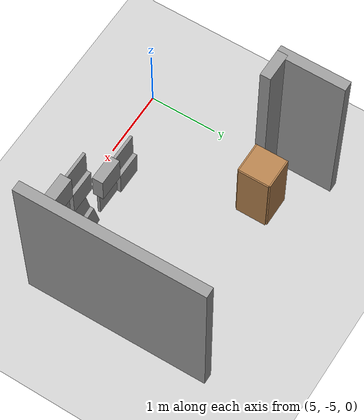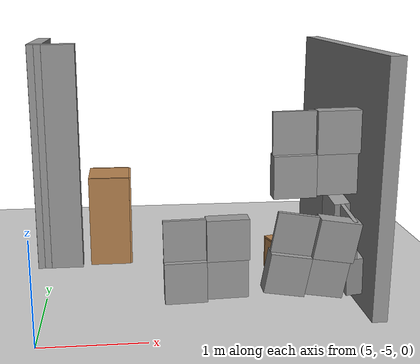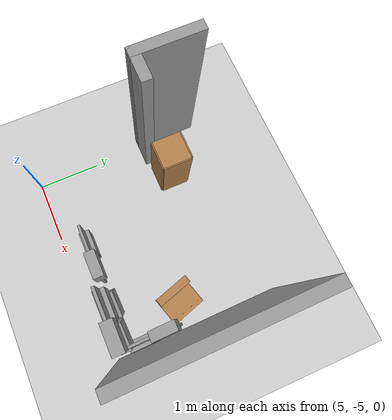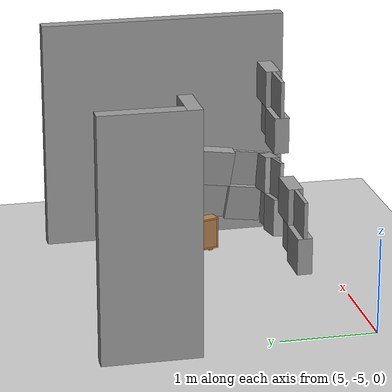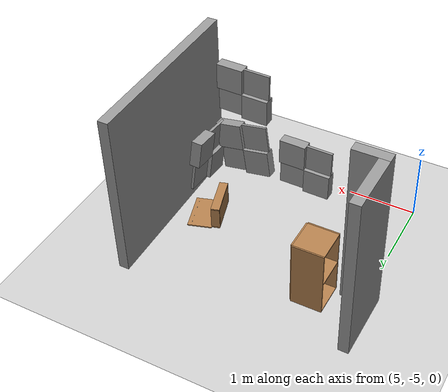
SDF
<sdf version="1.7">
 <world name="default">
  <model name="demo_clean">
   <static>1</static>
   <link name="Wall_15">
    <collision name="Wall_15_Collision">
     <geometry><box><size>2.6816 0.15 2.5</size></box></geometry>
     <pose>0 0 1.25 0 -0 0</pose>
     <surface>
      <friction>
       <ode><mu>1</mu><mu2>1</mu2><fdir1>0 0 0</fdir1><slip1>0</slip1><slip2>0</slip2></ode>
       <torsional>
        <coefficient>1</coefficient>
        <patch_radius>0</patch_radius>
        <surface_radius>0</surface_radius>
        <use_patch_radius>1</use_patch_radius>
        <ode><slip>0</slip></ode>
       </torsional>
      </friction>
      <bounce><restitution_coefficient>0</restitution_coefficient><threshold>1e+06</threshold></bounce>
      <contact>
       <collide_without_contact>0</collide_without_contact>
       <collide_without_contact_bitmask>1</collide_without_contact_bitmask>
       <collide_bitmask>1</collide_bitmask>
       <ode>
        <soft_cfm>0</soft_cfm>
        <soft_erp>0.2</soft_erp>
        <kp>1e+13</kp>
        <kd>1</kd>
        <max_vel>0.01</max_vel>
        <min_depth>0</min_depth>
       </ode>
       <bullet>
        <split_impulse>1</split_impulse>
        <split_impulse_penetration_threshold>-0.01</split_impulse_penetration_threshold>
        <soft_cfm>0</soft_cfm>
        <soft_erp>0.2</soft_erp>
        <kp>1e+13</kp>
        <kd>1</kd>
       </bullet>
      </contact>
     </surface>
    </collision>
    <visual name="Wall_15_Visual">
     <geometry><box><size>2.6816 0.15 2.5</size></box></geometry>
     <material>
      <script><name>Gazebo/Grey</name><uri>file://media/materials/scripts/gazebo.material</uri></script>
      <ambient>1 1 1 1</ambient>
      <shader type="pixel"><normal_map>default</normal_map></shader>
     </material>
     <pose>0 0 1.25 0 -0 0</pose>
    </visual>
    <pose>8.16988 -3.47452 0 0 0 -1.55787</pose>
   </link>
   <link name="Wall_40">
    <collision name="Wall_40_Collision">
     <geometry><box><size>1 0.15 2.5</size></box></geometry>
     <pose>0 0 1.25 0 -0 0</pose>
     <surface>
      <friction>
       <ode><mu>1</mu><mu2>1</mu2><fdir1>0 0 0</fdir1><slip1>0</slip1><slip2>0</slip2></ode>
       <torsional>
        <coefficient>1</coefficient>
        <patch_radius>0</patch_radius>
        <surface_radius>0</surface_radius>
        <use_patch_radius>1</use_patch_radius>
        <ode><slip>0</slip></ode>
       </torsional>
      </friction>
      <bounce><restitution_coefficient>0</restitution_coefficient><threshold>1e+06</threshold></bounce>
      <contact>
       <collide_without_contact>0</collide_without_contact>
       <collide_without_contact_bitmask>1</collide_without_contact_bitmask>
       <collide_bitmask>1</collide_bitmask>
       <ode>
        <soft_cfm>0</soft_cfm>
        <soft_erp>0.2</soft_erp>
        <kp>1e+13</kp>
        <kd>1</kd>
        <max_vel>0.01</max_vel>
        <min_depth>0</min_depth>
       </ode>
       <bullet>
        <split_impulse>1</split_impulse>
        <split_impulse_penetration_threshold>-0.01</split_impulse_penetration_threshold>
        <soft_cfm>0</soft_cfm>
        <soft_erp>0.2</soft_erp>
        <kp>1e+13</kp>
        <kd>1</kd>
       </bullet>
      </contact>
     </surface>
    </collision>
    <visual name="Wall_40_Visual">
     <geometry><box><size>1 0.15 2.5</size></box></geometry>
     <material>
      <script><name>Gazebo/Grey</name><uri>file://media/materials/scripts/gazebo.material</uri></script>
      <ambient>1 1 1 1</ambient>
      <shader type="pixel"><normal_map>default</normal_map></shader>
     </material>
     <pose>0 0 1.25 0 -0 0</pose>
    </visual>
    <pose>4.89119 -2.69073 0 0 0 -1.57324</pose>
   </link>
   <link name="Wall_41">
    <collision name="Wall_41_Collision">
     <geometry><box><size>0.5 0.15 2.5</size></box></geometry>
     <pose>0 0 1.25 0 -0 0</pose>
     <surface>
      <friction>
       <ode><mu>1</mu><mu2>1</mu2><fdir1>0 0 0</fdir1><slip1>0</slip1><slip2>0</slip2></ode>
       <torsional>
        <coefficient>1</coefficient>
        <patch_radius>0</patch_radius>
        <surface_radius>0</surface_radius>
        <use_patch_radius>1</use_patch_radius>
        <ode><slip>0</slip></ode>
       </torsional>
      </friction>
      <bounce><restitution_coefficient>0</restitution_coefficient><threshold>1e+06</threshold></bounce>
      <contact>
       <collide_without_contact>0</collide_without_contact>
       <collide_without_contact_bitmask>1</collide_without_contact_bitmask>
       <collide_bitmask>1</collide_bitmask>
       <ode>
        <soft_cfm>0</soft_cfm>
        <soft_erp>0.2</soft_erp>
        <kp>1e+13</kp>
        <kd>1</kd>
        <max_vel>0.01</max_vel>
        <min_depth>0</min_depth>
       </ode>
       <bullet>
        <split_impulse>1</split_impulse>
        <split_impulse_penetration_threshold>-0.01</split_impulse_penetration_threshold>
        <soft_cfm>0</soft_cfm>
        <soft_erp>0.2</soft_erp>
        <kp>1e+13</kp>
        <kd>1</kd>
       </bullet>
      </contact>
     </surface>
    </collision>
    <visual name="Wall_41_Visual">
     <geometry><box><size>0.5 0.15 2.5</size></box></geometry>
     <material>
      <script><name>Gazebo/Grey</name><uri>file://media/materials/scripts/gazebo.material</uri></script>
      <ambient>1 1 1 1</ambient>
      <shader type="pixel"><normal_map>default</normal_map></shader>
     </material>
     <pose>0 0 1.25 0 -0 0</pose>
    </visual>
    <pose>5.06619 -3.11573 0 0 -0 0</pose>
   </link>
  </model>
  <model name="ground_plane">
   <static>1</static>
   <link name="link">
    <collision name="collision">
     <geometry><plane><normal>0 0 1</normal><size>100 100</size></plane></geometry>
     <surface>
      <contact><collide_bitmask>65535</collide_bitmask></contact>
      <friction><ode><mu>100</mu><mu2>50</mu2></ode></friction>
     </surface>
    </collision>
    <visual name="visual">
     <cast_shadows>0</cast_shadows>
     <geometry><plane><normal>0 0 1</normal><size>100 100</size></plane></geometry>
     <material>
      <script><uri>file://media/materials/scripts/gazebo.material</uri><name>Gazebo/Grey</name></script>
     </material>
    </visual>
   </link>
  </model>
  <model name="wall_slate_5">
   <static>1</static>
   <link name="link_0">
    <inertial><mass>1</mass></inertial>
    <gravity>0</gravity>
    <visual name="visual">
     <pose>0 0.2 0.2 0 -0 0</pose>
     <geometry><box><size>0.16 0.4 0.4</size></box></geometry>
     <material>
      <lighting>1</lighting>
      <script><uri>file://media/materials/scripts/gazebo.material</uri><name>Gazebo/Grey</name></script>
      <shader type="pixel"><normal_map>__default__</normal_map></shader>
      <ambient>0.3 0.3 0.3 1</ambient>
      <diffuse>0.7 0.7 0.7 1</diffuse>
      <specular>0.01 0.01 0.01 1</specular>
      <emissive>0 0 0 1</emissive>
     </material>
    </visual>
    <visual name="ModelPreview_0::link_0::visual_1">
     <pose>0 0.2 -0.2 0 -0 0</pose>
     <geometry><box><size>0.04 0.4 0.4</size></box></geometry>
     <material>
      <lighting>1</lighting>
      <script><uri>file://media/materials/scripts/gazebo.material</uri><name>Gazebo/Grey</name></script>
      <shader type="pixel"><normal_map>__default__</normal_map></shader>
      <ambient>0.3 0.3 0.3 1</ambient>
      <diffuse>0.7 0.7 0.7 1</diffuse>
      <specular>0.01 0.01 0.01 1</specular>
      <emissive>0 0 0 1</emissive>
     </material>
    </visual>
    <visual name="ModelPreview_0::link_0::visual_2">
     <pose>0 -0.2 0.2 0 -0 0</pose>
     <geometry><box><size>0.04 0.4 0.4</size></box></geometry>
     <material>
      <lighting>1</lighting>
      <script><uri>file://media/materials/scripts/gazebo.material</uri><name>Gazebo/Grey</name></script>
      <shader type="pixel"><normal_map>__default__</normal_map></shader>
      <ambient>0.3 0.3 0.3 1</ambient>
      <diffuse>0.7 0.7 0.7 1</diffuse>
      <specular>0.01 0.01 0.01 1</specular>
      <emissive>0 0 0 1</emissive>
     </material>
    </visual>
    <visual name="ModelPreview_0::link_0::visual_3">
     <pose>0 -0.2 -0.2 0 -0 0</pose>
     <geometry><box><size>0.16 0.4 0.4</size></box></geometry>
     <material>
      <lighting>1</lighting>
      <script><uri>file://media/materials/scripts/gazebo.material</uri><name>Gazebo/Grey</name></script>
      <shader type="pixel"><normal_map>__default__</normal_map></shader>
      <ambient>0.3 0.3 0.3 1</ambient>
      <diffuse>0.7 0.7 0.7 1</diffuse>
      <specular>0.01 0.01 0.01 1</specular>
      <emissive>0 0 0 1</emissive>
     </material>
    </visual>
    <collision name="collision_2">
     <pose>0 -0.2 0.2 0 -0 0</pose>
     <geometry><box><size>0.04 0.4 0.4</size></box></geometry>
     <surface>
      <friction>
       <ode><mu>1</mu><mu2>1</mu2><fdir1>0 0 0</fdir1><slip1>0</slip1><slip2>0</slip2></ode>
       <torsional>
        <coefficient>1</coefficient>
        <patch_radius>0</patch_radius>
        <surface_radius>0</surface_radius>
        <use_patch_radius>1</use_patch_radius>
        <ode><slip>0</slip></ode>
       </torsional>
      </friction>
      <bounce><restitution_coefficient>0</restitution_coefficient><threshold>1e+06</threshold></bounce>
      <contact>
       <collide_without_contact>0</collide_without_contact>
       <collide_without_contact_bitmask>1</collide_without_contact_bitmask>
       <collide_bitmask>1</collide_bitmask>
       <ode>
        <soft_cfm>0</soft_cfm>
        <soft_erp>0.2</soft_erp>
        <kp>1e+13</kp>
        <kd>1</kd>
        <max_vel>0.01</max_vel>
        <min_depth>0</min_depth>
       </ode>
       <bullet>
        <split_impulse>1</split_impulse>
        <split_impulse_penetration_threshold>-0.01</split_impulse_penetration_threshold>
        <soft_cfm>0</soft_cfm>
        <soft_erp>0.2</soft_erp>
        <kp>1e+13</kp>
        <kd>1</kd>
       </bullet>
      </contact>
     </surface>
    </collision>
    <collision name="collision_1">
     <pose>0 0.2 -0.2 0 -0 0</pose>
     <geometry><box><size>0.04 0.4 0.4</size></box></geometry>
     <surface>
      <friction>
       <ode><mu>1</mu><mu2>1</mu2><fdir1>0 0 0</fdir1><slip1>0</slip1><slip2>0</slip2></ode>
       <torsional>
        <coefficient>1</coefficient>
        <patch_radius>0</patch_radius>
        <surface_radius>0</surface_radius>
        <use_patch_radius>1</use_patch_radius>
        <ode><slip>0</slip></ode>
       </torsional>
      </friction>
      <bounce><restitution_coefficient>0</restitution_coefficient><threshold>1e+06</threshold></bounce>
      <contact>
       <collide_without_contact>0</collide_without_contact>
       <collide_without_contact_bitmask>1</collide_without_contact_bitmask>
       <collide_bitmask>1</collide_bitmask>
       <ode>
        <soft_cfm>0</soft_cfm>
        <soft_erp>0.2</soft_erp>
        <kp>1e+13</kp>
        <kd>1</kd>
        <max_vel>0.01</max_vel>
        <min_depth>0</min_depth>
       </ode>
       <bullet>
        <split_impulse>1</split_impulse>
        <split_impulse_penetration_threshold>-0.01</split_impulse_penetration_threshold>
        <soft_cfm>0</soft_cfm>
        <soft_erp>0.2</soft_erp>
        <kp>1e+13</kp>
        <kd>1</kd>
       </bullet>
      </contact>
     </surface>
    </collision>
    <collision name="collision_4">
     <pose>0 0.2 0.2 0 -0 0</pose>
     <geometry><box><size>0.16 0.4 0.4</size></box></geometry>
     <surface>
      <friction>
       <ode><mu>1</mu><mu2>1</mu2><fdir1>0 0 0</fdir1><slip1>0</slip1><slip2>0</slip2></ode>
       <torsional>
        <coefficient>1</coefficient>
        <patch_radius>0</patch_radius>
        <surface_radius>0</surface_radius>
        <use_patch_radius>1</use_patch_radius>
        <ode><slip>0</slip></ode>
       </torsional>
      </friction>
      <bounce><restitution_coefficient>0</restitution_coefficient><threshold>1e+06</threshold></bounce>
      <contact>
       <collide_without_contact>0</collide_without_contact>
       <collide_without_contact_bitmask>1</collide_without_contact_bitmask>
       <collide_bitmask>1</collide_bitmask>
       <ode>
        <soft_cfm>0</soft_cfm>
        <soft_erp>0.2</soft_erp>
        <kp>1e+13</kp>
        <kd>1</kd>
        <max_vel>0.01</max_vel>
        <min_depth>0</min_depth>
       </ode>
       <bullet>
        <split_impulse>1</split_impulse>
        <split_impulse_penetration_threshold>-0.01</split_impulse_penetration_threshold>
        <soft_cfm>0</soft_cfm>
        <soft_erp>0.2</soft_erp>
        <kp>1e+13</kp>
        <kd>1</kd>
       </bullet>
      </contact>
     </surface>
    </collision>
    <collision name="collision_3">
     <pose>0 -0.2 -0.2 0 -0 0</pose>
     <geometry><box><size>0.16 0.4 0.4</size></box></geometry>
     <surface>
      <friction>
       <ode><mu>1</mu><mu2>1</mu2><fdir1>0 0 0</fdir1><slip1>0</slip1><slip2>0</slip2></ode>
       <torsional>
        <coefficient>1</coefficient>
        <patch_radius>0</patch_radius>
        <surface_radius>0</surface_radius>
        <use_patch_radius>1</use_patch_radius>
        <ode><slip>0</slip></ode>
       </torsional>
      </friction>
      <bounce><restitution_coefficient>0</restitution_coefficient><threshold>1e+06</threshold></bounce>
      <contact>
       <collide_without_contact>0</collide_without_contact>
       <collide_without_contact_bitmask>1</collide_without_contact_bitmask>
       <collide_bitmask>1</collide_bitmask>
       <ode>
        <soft_cfm>0</soft_cfm>
        <soft_erp>0.2</soft_erp>
        <kp>1e+13</kp>
        <kd>1</kd>
        <max_vel>0.01</max_vel>
        <min_depth>0</min_depth>
       </ode>
       <bullet>
        <split_impulse>1</split_impulse>
        <split_impulse_penetration_threshold>-0.01</split_impulse_penetration_threshold>
        <soft_cfm>0</soft_cfm>
        <soft_erp>0.2</soft_erp>
        <kp>1e+13</kp>
        <kd>1</kd>
       </bullet>
      </contact>
     </surface>
    </collision>
   </link>
   <pose>7.98585 -4.1722 0.6 0.14 -0.08 0.01783</pose>
  </model>
  <model name="wall_slate_17">
   <static>1</static>
   <link name="link_0">
    <inertial><mass>1</mass></inertial>
    <gravity>0</gravity>
    <visual name="visual">
     <pose>0 0.2 0.2 0 -0 0</pose>
     <geometry><box><size>0.16 0.4 0.4</size></box></geometry>
     <material>
      <lighting>1</lighting>
      <script><uri>file://media/materials/scripts/gazebo.material</uri><name>Gazebo/Grey</name></script>
      <shader type="pixel"><normal_map>__default__</normal_map></shader>
      <ambient>0.3 0.3 0.3 1</ambient>
      <diffuse>0.7 0.7 0.7 1</diffuse>
      <specular>0.01 0.01 0.01 1</specular>
      <emissive>0 0 0 1</emissive>
     </material>
    </visual>
    <visual name="ModelPreview_0::link_0::visual_1">
     <pose>0 0.2 -0.2 0 -0 0</pose>
     <geometry><box><size>0.04 0.4 0.4</size></box></geometry>
     <material>
      <lighting>1</lighting>
      <script><uri>file://media/materials/scripts/gazebo.material</uri><name>Gazebo/Grey</name></script>
      <shader type="pixel"><normal_map>__default__</normal_map></shader>
      <ambient>0.3 0.3 0.3 1</ambient>
      <diffuse>0.7 0.7 0.7 1</diffuse>
      <specular>0.01 0.01 0.01 1</specular>
      <emissive>0 0 0 1</emissive>
     </material>
    </visual>
    <visual name="ModelPreview_0::link_0::visual_2">
     <pose>0 -0.2 0.2 0 -0 0</pose>
     <geometry><box><size>0.04 0.4 0.4</size></box></geometry>
     <material>
      <lighting>1</lighting>
      <script><uri>file://media/materials/scripts/gazebo.material</uri><name>Gazebo/Grey</name></script>
      <shader type="pixel"><normal_map>__default__</normal_map></shader>
      <ambient>0.3 0.3 0.3 1</ambient>
      <diffuse>0.7 0.7 0.7 1</diffuse>
      <specular>0.01 0.01 0.01 1</specular>
      <emissive>0 0 0 1</emissive>
     </material>
    </visual>
    <visual name="ModelPreview_0::link_0::visual_3">
     <pose>0 -0.2 -0.2 0 -0 0</pose>
     <geometry><box><size>0.16 0.4 0.4</size></box></geometry>
     <material>
      <lighting>1</lighting>
      <script><uri>file://media/materials/scripts/gazebo.material</uri><name>Gazebo/Grey</name></script>
      <shader type="pixel"><normal_map>__default__</normal_map></shader>
      <ambient>0.3 0.3 0.3 1</ambient>
      <diffuse>0.7 0.7 0.7 1</diffuse>
      <specular>0.01 0.01 0.01 1</specular>
      <emissive>0 0 0 1</emissive>
     </material>
    </visual>
    <collision name="collision_2">
     <pose>0 -0.2 0.2 0 -0 0</pose>
     <geometry><box><size>0.04 0.4 0.4</size></box></geometry>
     <surface>
      <friction>
       <ode><mu>1</mu><mu2>1</mu2><fdir1>0 0 0</fdir1><slip1>0</slip1><slip2>0</slip2></ode>
       <torsional>
        <coefficient>1</coefficient>
        <patch_radius>0</patch_radius>
        <surface_radius>0</surface_radius>
        <use_patch_radius>1</use_patch_radius>
        <ode><slip>0</slip></ode>
       </torsional>
      </friction>
      <bounce><restitution_coefficient>0</restitution_coefficient><threshold>1e+06</threshold></bounce>
      <contact>
       <collide_without_contact>0</collide_without_contact>
       <collide_without_contact_bitmask>1</collide_without_contact_bitmask>
       <collide_bitmask>1</collide_bitmask>
       <ode>
        <soft_cfm>0</soft_cfm>
        <soft_erp>0.2</soft_erp>
        <kp>1e+13</kp>
        <kd>1</kd>
        <max_vel>0.01</max_vel>
        <min_depth>0</min_depth>
       </ode>
       <bullet>
        <split_impulse>1</split_impulse>
        <split_impulse_penetration_threshold>-0.01</split_impulse_penetration_threshold>
        <soft_cfm>0</soft_cfm>
        <soft_erp>0.2</soft_erp>
        <kp>1e+13</kp>
        <kd>1</kd>
       </bullet>
      </contact>
     </surface>
    </collision>
    <collision name="collision_1">
     <pose>0 0.2 -0.2 0 -0 0</pose>
     <geometry><box><size>0.04 0.4 0.4</size></box></geometry>
     <surface>
      <friction>
       <ode><mu>1</mu><mu2>1</mu2><fdir1>0 0 0</fdir1><slip1>0</slip1><slip2>0</slip2></ode>
       <torsional>
        <coefficient>1</coefficient>
        <patch_radius>0</patch_radius>
        <surface_radius>0</surface_radius>
        <use_patch_radius>1</use_patch_radius>
        <ode><slip>0</slip></ode>
       </torsional>
      </friction>
      <bounce><restitution_coefficient>0</restitution_coefficient><threshold>1e+06</threshold></bounce>
      <contact>
       <collide_without_contact>0</collide_without_contact>
       <collide_without_contact_bitmask>1</collide_without_contact_bitmask>
       <collide_bitmask>1</collide_bitmask>
       <ode>
        <soft_cfm>0</soft_cfm>
        <soft_erp>0.2</soft_erp>
        <kp>1e+13</kp>
        <kd>1</kd>
        <max_vel>0.01</max_vel>
        <min_depth>0</min_depth>
       </ode>
       <bullet>
        <split_impulse>1</split_impulse>
        <split_impulse_penetration_threshold>-0.01</split_impulse_penetration_threshold>
        <soft_cfm>0</soft_cfm>
        <soft_erp>0.2</soft_erp>
        <kp>1e+13</kp>
        <kd>1</kd>
       </bullet>
      </contact>
     </surface>
    </collision>
    <collision name="collision_4">
     <pose>0 0.2 0.2 0 -0 0</pose>
     <geometry><box><size>0.16 0.4 0.4</size></box></geometry>
     <surface>
      <friction>
       <ode><mu>1</mu><mu2>1</mu2><fdir1>0 0 0</fdir1><slip1>0</slip1><slip2>0</slip2></ode>
       <torsional>
        <coefficient>1</coefficient>
        <patch_radius>0</patch_radius>
        <surface_radius>0</surface_radius>
        <use_patch_radius>1</use_patch_radius>
        <ode><slip>0</slip></ode>
       </torsional>
      </friction>
      <bounce><restitution_coefficient>0</restitution_coefficient><threshold>1e+06</threshold></bounce>
      <contact>
       <collide_without_contact>0</collide_without_contact>
       <collide_without_contact_bitmask>1</collide_without_contact_bitmask>
       <collide_bitmask>1</collide_bitmask>
       <ode>
        <soft_cfm>0</soft_cfm>
        <soft_erp>0.2</soft_erp>
        <kp>1e+13</kp>
        <kd>1</kd>
        <max_vel>0.01</max_vel>
        <min_depth>0</min_depth>
       </ode>
       <bullet>
        <split_impulse>1</split_impulse>
        <split_impulse_penetration_threshold>-0.01</split_impulse_penetration_threshold>
        <soft_cfm>0</soft_cfm>
        <soft_erp>0.2</soft_erp>
        <kp>1e+13</kp>
        <kd>1</kd>
       </bullet>
      </contact>
     </surface>
    </collision>
    <collision name="collision_3">
     <pose>0 -0.2 -0.2 0 -0 0</pose>
     <geometry><box><size>0.16 0.4 0.4</size></box></geometry>
     <surface>
      <friction>
       <ode><mu>1</mu><mu2>1</mu2><fdir1>0 0 0</fdir1><slip1>0</slip1><slip2>0</slip2></ode>
       <torsional>
        <coefficient>1</coefficient>
        <patch_radius>0</patch_radius>
        <surface_radius>0</surface_radius>
        <use_patch_radius>1</use_patch_radius>
        <ode><slip>0</slip></ode>
       </torsional>
      </friction>
      <bounce><restitution_coefficient>0</restitution_coefficient><threshold>1e+06</threshold></bounce>
      <contact>
       <collide_without_contact>0</collide_without_contact>
       <collide_without_contact_bitmask>1</collide_without_contact_bitmask>
       <collide_bitmask>1</collide_bitmask>
       <ode>
        <soft_cfm>0</soft_cfm>
        <soft_erp>0.2</soft_erp>
        <kp>1e+13</kp>
        <kd>1</kd>
        <max_vel>0.01</max_vel>
        <min_depth>0</min_depth>
       </ode>
       <bullet>
        <split_impulse>1</split_impulse>
        <split_impulse_penetration_threshold>-0.01</split_impulse_penetration_threshold>
        <soft_cfm>0</soft_cfm>
        <soft_erp>0.2</soft_erp>
        <kp>1e+13</kp>
        <kd>1</kd>
       </bullet>
      </contact>
     </surface>
    </collision>
   </link>
   <pose>7.56125 -4.5652 0.6 -0.16 0.06 -1.5659</pose>
  </model>
  <model name="wall_slate_27">
   <static>1</static>
   <link name="link_0">
    <inertial><mass>1</mass></inertial>
    <gravity>0</gravity>
    <visual name="visual">
     <pose>0 0.2 0.2 0 -0 0</pose>
     <geometry><box><size>0.16 0.4 0.4</size></box></geometry>
     <material>
      <lighting>1</lighting>
      <script><uri>file://media/materials/scripts/gazebo.material</uri><name>Gazebo/Grey</name></script>
      <shader type="pixel"><normal_map>__default__</normal_map></shader>
      <ambient>0.3 0.3 0.3 1</ambient>
      <diffuse>0.7 0.7 0.7 1</diffuse>
      <specular>0.01 0.01 0.01 1</specular>
      <emissive>0 0 0 1</emissive>
     </material>
    </visual>
    <visual name="ModelPreview_0::link_0::visual_1">
     <pose>0 0.2 -0.2 0 -0 0</pose>
     <geometry><box><size>0.04 0.4 0.4</size></box></geometry>
     <material>
      <lighting>1</lighting>
      <script><uri>file://media/materials/scripts/gazebo.material</uri><name>Gazebo/Grey</name></script>
      <shader type="pixel"><normal_map>__default__</normal_map></shader>
      <ambient>0.3 0.3 0.3 1</ambient>
      <diffuse>0.7 0.7 0.7 1</diffuse>
      <specular>0.01 0.01 0.01 1</specular>
      <emissive>0 0 0 1</emissive>
     </material>
    </visual>
    <visual name="ModelPreview_0::link_0::visual_2">
     <pose>0 -0.2 0.2 0 -0 0</pose>
     <geometry><box><size>0.04 0.4 0.4</size></box></geometry>
     <material>
      <lighting>1</lighting>
      <script><uri>file://media/materials/scripts/gazebo.material</uri><name>Gazebo/Grey</name></script>
      <shader type="pixel"><normal_map>__default__</normal_map></shader>
      <ambient>0.3 0.3 0.3 1</ambient>
      <diffuse>0.7 0.7 0.7 1</diffuse>
      <specular>0.01 0.01 0.01 1</specular>
      <emissive>0 0 0 1</emissive>
     </material>
    </visual>
    <visual name="ModelPreview_0::link_0::visual_3">
     <pose>0 -0.2 -0.2 0 -0 0</pose>
     <geometry><box><size>0.16 0.4 0.4</size></box></geometry>
     <material>
      <lighting>1</lighting>
      <script><uri>file://media/materials/scripts/gazebo.material</uri><name>Gazebo/Grey</name></script>
      <shader type="pixel"><normal_map>__default__</normal_map></shader>
      <ambient>0.3 0.3 0.3 1</ambient>
      <diffuse>0.7 0.7 0.7 1</diffuse>
      <specular>0.01 0.01 0.01 1</specular>
      <emissive>0 0 0 1</emissive>
     </material>
    </visual>
    <collision name="collision_2">
     <pose>0 -0.2 0.2 0 -0 0</pose>
     <geometry><box><size>0.04 0.4 0.4</size></box></geometry>
     <surface>
      <friction>
       <ode><mu>1</mu><mu2>1</mu2><fdir1>0 0 0</fdir1><slip1>0</slip1><slip2>0</slip2></ode>
       <torsional>
        <coefficient>1</coefficient>
        <patch_radius>0</patch_radius>
        <surface_radius>0</surface_radius>
        <use_patch_radius>1</use_patch_radius>
        <ode><slip>0</slip></ode>
       </torsional>
      </friction>
      <bounce><restitution_coefficient>0</restitution_coefficient><threshold>1e+06</threshold></bounce>
      <contact>
       <collide_without_contact>0</collide_without_contact>
       <collide_without_contact_bitmask>1</collide_without_contact_bitmask>
       <collide_bitmask>1</collide_bitmask>
       <ode>
        <soft_cfm>0</soft_cfm>
        <soft_erp>0.2</soft_erp>
        <kp>1e+13</kp>
        <kd>1</kd>
        <max_vel>0.01</max_vel>
        <min_depth>0</min_depth>
       </ode>
       <bullet>
        <split_impulse>1</split_impulse>
        <split_impulse_penetration_threshold>-0.01</split_impulse_penetration_threshold>
        <soft_cfm>0</soft_cfm>
        <soft_erp>0.2</soft_erp>
        <kp>1e+13</kp>
        <kd>1</kd>
       </bullet>
      </contact>
     </surface>
    </collision>
    <collision name="collision_1">
     <pose>0 0.2 -0.2 0 -0 0</pose>
     <geometry><box><size>0.04 0.4 0.4</size></box></geometry>
     <surface>
      <friction>
       <ode><mu>1</mu><mu2>1</mu2><fdir1>0 0 0</fdir1><slip1>0</slip1><slip2>0</slip2></ode>
       <torsional>
        <coefficient>1</coefficient>
        <patch_radius>0</patch_radius>
        <surface_radius>0</surface_radius>
        <use_patch_radius>1</use_patch_radius>
        <ode><slip>0</slip></ode>
       </torsional>
      </friction>
      <bounce><restitution_coefficient>0</restitution_coefficient><threshold>1e+06</threshold></bounce>
      <contact>
       <collide_without_contact>0</collide_without_contact>
       <collide_without_contact_bitmask>1</collide_without_contact_bitmask>
       <collide_bitmask>1</collide_bitmask>
       <ode>
        <soft_cfm>0</soft_cfm>
        <soft_erp>0.2</soft_erp>
        <kp>1e+13</kp>
        <kd>1</kd>
        <max_vel>0.01</max_vel>
        <min_depth>0</min_depth>
       </ode>
       <bullet>
        <split_impulse>1</split_impulse>
        <split_impulse_penetration_threshold>-0.01</split_impulse_penetration_threshold>
        <soft_cfm>0</soft_cfm>
        <soft_erp>0.2</soft_erp>
        <kp>1e+13</kp>
        <kd>1</kd>
       </bullet>
      </contact>
     </surface>
    </collision>
    <collision name="collision_4">
     <pose>0 0.2 0.2 0 -0 0</pose>
     <geometry><box><size>0.16 0.4 0.4</size></box></geometry>
     <surface>
      <friction>
       <ode><mu>1</mu><mu2>1</mu2><fdir1>0 0 0</fdir1><slip1>0</slip1><slip2>0</slip2></ode>
       <torsional>
        <coefficient>1</coefficient>
        <patch_radius>0</patch_radius>
        <surface_radius>0</surface_radius>
        <use_patch_radius>1</use_patch_radius>
        <ode><slip>0</slip></ode>
       </torsional>
      </friction>
      <bounce><restitution_coefficient>0</restitution_coefficient><threshold>1e+06</threshold></bounce>
      <contact>
       <collide_without_contact>0</collide_without_contact>
       <collide_without_contact_bitmask>1</collide_without_contact_bitmask>
       <collide_bitmask>1</collide_bitmask>
       <ode>
        <soft_cfm>0</soft_cfm>
        <soft_erp>0.2</soft_erp>
        <kp>1e+13</kp>
        <kd>1</kd>
        <max_vel>0.01</max_vel>
        <min_depth>0</min_depth>
       </ode>
       <bullet>
        <split_impulse>1</split_impulse>
        <split_impulse_penetration_threshold>-0.01</split_impulse_penetration_threshold>
        <soft_cfm>0</soft_cfm>
        <soft_erp>0.2</soft_erp>
        <kp>1e+13</kp>
        <kd>1</kd>
       </bullet>
      </contact>
     </surface>
    </collision>
    <collision name="collision_3">
     <pose>0 -0.2 -0.2 0 -0 0</pose>
     <geometry><box><size>0.16 0.4 0.4</size></box></geometry>
     <surface>
      <friction>
       <ode><mu>1</mu><mu2>1</mu2><fdir1>0 0 0</fdir1><slip1>0</slip1><slip2>0</slip2></ode>
       <torsional>
        <coefficient>1</coefficient>
        <patch_radius>0</patch_radius>
        <surface_radius>0</surface_radius>
        <use_patch_radius>1</use_patch_radius>
        <ode><slip>0</slip></ode>
       </torsional>
      </friction>
      <bounce><restitution_coefficient>0</restitution_coefficient><threshold>1e+06</threshold></bounce>
      <contact>
       <collide_without_contact>0</collide_without_contact>
       <collide_without_contact_bitmask>1</collide_without_contact_bitmask>
       <collide_bitmask>1</collide_bitmask>
       <ode>
        <soft_cfm>0</soft_cfm>
        <soft_erp>0.2</soft_erp>
        <kp>1e+13</kp>
        <kd>1</kd>
        <max_vel>0.01</max_vel>
        <min_depth>0</min_depth>
       </ode>
       <bullet>
        <split_impulse>1</split_impulse>
        <split_impulse_penetration_threshold>-0.01</split_impulse_penetration_threshold>
        <soft_cfm>0</soft_cfm>
        <soft_erp>0.2</soft_erp>
        <kp>1e+13</kp>
        <kd>1</kd>
       </bullet>
      </contact>
     </surface>
    </collision>
   </link>
   <pose>7.56125 -4.5652 1.6 0.02 -0 -1.5659</pose>
  </model>
  <model name="wall_slate_44">
   <static>1</static>
   <link name="link_0">
    <inertial><mass>1</mass></inertial>
    <gravity>0</gravity>
    <visual name="visual">
     <pose>0 0.2 0.2 0 -0 0</pose>
     <geometry><box><size>0.16 0.4 0.4</size></box></geometry>
     <material>
      <lighting>1</lighting>
      <script><uri>file://media/materials/scripts/gazebo.material</uri><name>Gazebo/Grey</name></script>
      <shader type="pixel"><normal_map>__default__</normal_map></shader>
      <ambient>0.3 0.3 0.3 1</ambient>
      <diffuse>0.7 0.7 0.7 1</diffuse>
      <specular>0.01 0.01 0.01 1</specular>
      <emissive>0 0 0 1</emissive>
     </material>
    </visual>
    <visual name="ModelPreview_0::link_0::visual_1">
     <pose>0 0.2 -0.2 0 -0 0</pose>
     <geometry><box><size>0.04 0.4 0.4</size></box></geometry>
     <material>
      <lighting>1</lighting>
      <script><uri>file://media/materials/scripts/gazebo.material</uri><name>Gazebo/Grey</name></script>
      <shader type="pixel"><normal_map>__default__</normal_map></shader>
      <ambient>0.3 0.3 0.3 1</ambient>
      <diffuse>0.7 0.7 0.7 1</diffuse>
      <specular>0.01 0.01 0.01 1</specular>
      <emissive>0 0 0 1</emissive>
     </material>
    </visual>
    <visual name="ModelPreview_0::link_0::visual_2">
     <pose>0 -0.2 0.2 0 -0 0</pose>
     <geometry><box><size>0.04 0.4 0.4</size></box></geometry>
     <material>
      <lighting>1</lighting>
      <script><uri>file://media/materials/scripts/gazebo.material</uri><name>Gazebo/Grey</name></script>
      <shader type="pixel"><normal_map>__default__</normal_map></shader>
      <ambient>0.3 0.3 0.3 1</ambient>
      <diffuse>0.7 0.7 0.7 1</diffuse>
      <specular>0.01 0.01 0.01 1</specular>
      <emissive>0 0 0 1</emissive>
     </material>
    </visual>
    <visual name="ModelPreview_0::link_0::visual_3">
     <pose>0 -0.2 -0.2 0 -0 0</pose>
     <geometry><box><size>0.16 0.4 0.4</size></box></geometry>
     <material>
      <lighting>1</lighting>
      <script><uri>file://media/materials/scripts/gazebo.material</uri><name>Gazebo/Grey</name></script>
      <shader type="pixel"><normal_map>__default__</normal_map></shader>
      <ambient>0.3 0.3 0.3 1</ambient>
      <diffuse>0.7 0.7 0.7 1</diffuse>
      <specular>0.01 0.01 0.01 1</specular>
      <emissive>0 0 0 1</emissive>
     </material>
    </visual>
    <collision name="collision_2">
     <pose>0 -0.2 0.2 0 -0 0</pose>
     <geometry><box><size>0.04 0.4 0.4</size></box></geometry>
     <surface>
      <friction>
       <ode><mu>1</mu><mu2>1</mu2><fdir1>0 0 0</fdir1><slip1>0</slip1><slip2>0</slip2></ode>
       <torsional>
        <coefficient>1</coefficient>
        <patch_radius>0</patch_radius>
        <surface_radius>0</surface_radius>
        <use_patch_radius>1</use_patch_radius>
        <ode><slip>0</slip></ode>
       </torsional>
      </friction>
      <bounce><restitution_coefficient>0</restitution_coefficient><threshold>1e+06</threshold></bounce>
      <contact>
       <collide_without_contact>0</collide_without_contact>
       <collide_without_contact_bitmask>1</collide_without_contact_bitmask>
       <collide_bitmask>1</collide_bitmask>
       <ode>
        <soft_cfm>0</soft_cfm>
        <soft_erp>0.2</soft_erp>
        <kp>1e+13</kp>
        <kd>1</kd>
        <max_vel>0.01</max_vel>
        <min_depth>0</min_depth>
       </ode>
       <bullet>
        <split_impulse>1</split_impulse>
        <split_impulse_penetration_threshold>-0.01</split_impulse_penetration_threshold>
        <soft_cfm>0</soft_cfm>
        <soft_erp>0.2</soft_erp>
        <kp>1e+13</kp>
        <kd>1</kd>
       </bullet>
      </contact>
     </surface>
    </collision>
    <collision name="collision_1">
     <pose>0 0.2 -0.2 0 -0 0</pose>
     <geometry><box><size>0.04 0.4 0.4</size></box></geometry>
     <surface>
      <friction>
       <ode><mu>1</mu><mu2>1</mu2><fdir1>0 0 0</fdir1><slip1>0</slip1><slip2>0</slip2></ode>
       <torsional>
        <coefficient>1</coefficient>
        <patch_radius>0</patch_radius>
        <surface_radius>0</surface_radius>
        <use_patch_radius>1</use_patch_radius>
        <ode><slip>0</slip></ode>
       </torsional>
      </friction>
      <bounce><restitution_coefficient>0</restitution_coefficient><threshold>1e+06</threshold></bounce>
      <contact>
       <collide_without_contact>0</collide_without_contact>
       <collide_without_contact_bitmask>1</collide_without_contact_bitmask>
       <collide_bitmask>1</collide_bitmask>
       <ode>
        <soft_cfm>0</soft_cfm>
        <soft_erp>0.2</soft_erp>
        <kp>1e+13</kp>
        <kd>1</kd>
        <max_vel>0.01</max_vel>
        <min_depth>0</min_depth>
       </ode>
       <bullet>
        <split_impulse>1</split_impulse>
        <split_impulse_penetration_threshold>-0.01</split_impulse_penetration_threshold>
        <soft_cfm>0</soft_cfm>
        <soft_erp>0.2</soft_erp>
        <kp>1e+13</kp>
        <kd>1</kd>
       </bullet>
      </contact>
     </surface>
    </collision>
    <collision name="collision_4">
     <pose>0 0.2 0.2 0 -0 0</pose>
     <geometry><box><size>0.16 0.4 0.4</size></box></geometry>
     <surface>
      <friction>
       <ode><mu>1</mu><mu2>1</mu2><fdir1>0 0 0</fdir1><slip1>0</slip1><slip2>0</slip2></ode>
       <torsional>
        <coefficient>1</coefficient>
        <patch_radius>0</patch_radius>
        <surface_radius>0</surface_radius>
        <use_patch_radius>1</use_patch_radius>
        <ode><slip>0</slip></ode>
       </torsional>
      </friction>
      <bounce><restitution_coefficient>0</restitution_coefficient><threshold>1e+06</threshold></bounce>
      <contact>
       <collide_without_contact>0</collide_without_contact>
       <collide_without_contact_bitmask>1</collide_without_contact_bitmask>
       <collide_bitmask>1</collide_bitmask>
       <ode>
        <soft_cfm>0</soft_cfm>
        <soft_erp>0.2</soft_erp>
        <kp>1e+13</kp>
        <kd>1</kd>
        <max_vel>0.01</max_vel>
        <min_depth>0</min_depth>
       </ode>
       <bullet>
        <split_impulse>1</split_impulse>
        <split_impulse_penetration_threshold>-0.01</split_impulse_penetration_threshold>
        <soft_cfm>0</soft_cfm>
        <soft_erp>0.2</soft_erp>
        <kp>1e+13</kp>
        <kd>1</kd>
       </bullet>
      </contact>
     </surface>
    </collision>
    <collision name="collision_3">
     <pose>0 -0.2 -0.2 0 -0 0</pose>
     <geometry><box><size>0.16 0.4 0.4</size></box></geometry>
     <surface>
      <friction>
       <ode><mu>1</mu><mu2>1</mu2><fdir1>0 0 0</fdir1><slip1>0</slip1><slip2>0</slip2></ode>
       <torsional>
        <coefficient>1</coefficient>
        <patch_radius>0</patch_radius>
        <surface_radius>0</surface_radius>
        <use_patch_radius>1</use_patch_radius>
        <ode><slip>0</slip></ode>
       </torsional>
      </friction>
      <bounce><restitution_coefficient>0</restitution_coefficient><threshold>1e+06</threshold></bounce>
      <contact>
       <collide_without_contact>0</collide_without_contact>
       <collide_without_contact_bitmask>1</collide_without_contact_bitmask>
       <collide_bitmask>1</collide_bitmask>
       <ode>
        <soft_cfm>0</soft_cfm>
        <soft_erp>0.2</soft_erp>
        <kp>1e+13</kp>
        <kd>1</kd>
        <max_vel>0.01</max_vel>
        <min_depth>0</min_depth>
       </ode>
       <bullet>
        <split_impulse>1</split_impulse>
        <split_impulse_penetration_threshold>-0.01</split_impulse_penetration_threshold>
        <soft_cfm>0</soft_cfm>
        <soft_erp>0.2</soft_erp>
        <kp>1e+13</kp>
        <kd>1</kd>
       </bullet>
      </contact>
     </surface>
    </collision>
   </link>
   <pose>6.56125 -4.5652 0.6 0.02 -0 -1.5659</pose>
  </model>
  <model name="wooden_case_1">
   <link name="base">
    <pose>0 0 0.024 0 -0 0</pose>
    <inertial>
     <pose>-0.022184 0 0.171592 0 -0 0</pose>
     <mass>3.96264</mass>
     <inertia>
      <ixx>0.213536</ixx>
      <ixy>0</ixy>
      <ixz>0.000779377</ixz>
      <iyy>0.0708943</iyy>
      <iyz>0</iyz>
      <izz>0.154604</izz>
     </inertia>
    </inertial>
    <collision name="collision_back">
     <pose>-0.053975 0 0.1778 0 -0 0</pose>
     <geometry><box><size>0.01905 0.5461 0.3175</size></box></geometry>
     <surface>
      <contact>
       <poissons_ratio>0.347</poissons_ratio>
       <elastic_modulus>8.8e+09</elastic_modulus>
       <ode><kp>100000</kp><kd>100</kd><max_vel>100</max_vel><min_depth>0.001</min_depth></ode>
      </contact>
      <friction>
       <torsional>
        <coefficient>1</coefficient>
        <use_patch_radius>0</use_patch_radius>
        <surface_radius>0.01</surface_radius>
       </torsional>
      </friction>
     </surface>
    </collision>
    <visual name="visual_back">
     <pose>-0.053975 0 0.1778 0 -0 0</pose>
     <geometry><box><size>0.01905 0.5461 0.3175</size></box></geometry>
     <material>
      <script><uri>file://media/materials/scripts/gazebo.material</uri><name>Gazebo/Wood</name></script>
     </material>
    </visual>
    <collision name="collision_bottom">
     <pose>0 0 0.009525 0 -0 0</pose>
     <geometry><box><size>0.127 0.5842 0.01905</size></box></geometry>
     <surface>
      <contact>
       <poissons_ratio>0.347</poissons_ratio>
       <elastic_modulus>8.8e+09</elastic_modulus>
       <ode><kp>100000</kp><kd>100</kd><max_vel>100</max_vel><min_depth>0.001</min_depth></ode>
      </contact>
      <friction>
       <torsional>
        <coefficient>1</coefficient>
        <use_patch_radius>0</use_patch_radius>
        <surface_radius>0.01</surface_radius>
       </torsional>
      </friction>
     </surface>
    </collision>
    <visual name="visual_bottom">
     <pose>0 0 0.009525 0 -0 0</pose>
     <geometry><box><size>0.127 0.5842 0.01905</size></box></geometry>
     <material>
      <script><uri>file://media/materials/scripts/gazebo.material</uri><name>Gazebo/Wood</name></script>
     </material>
    </visual>
    <collision name="collision_top">
     <pose>0 0 0.346075 0 -0 0</pose>
     <geometry><box><size>0.127 0.5842 0.01905</size></box></geometry>
     <surface>
      <contact>
       <poissons_ratio>0.347</poissons_ratio>
       <elastic_modulus>8.8e+09</elastic_modulus>
       <ode><kp>100000</kp><kd>100</kd><max_vel>100</max_vel><min_depth>0.001</min_depth></ode>
      </contact>
      <friction>
       <torsional>
        <coefficient>1</coefficient>
        <use_patch_radius>0</use_patch_radius>
        <surface_radius>0.01</surface_radius>
       </torsional>
      </friction>
     </surface>
    </collision>
    <visual name="visual_top">
     <pose>0 0 0.346075 0 -0 0</pose>
     <geometry><box><size>0.127 0.5842 0.01905</size></box></geometry>
     <material>
      <script><uri>file://media/materials/scripts/gazebo.material</uri><name>Gazebo/Wood</name></script>
     </material>
    </visual>
    <collision name="collision_left">
     <pose>0 -0.282575 0.1778 0 -0 0</pose>
     <geometry><box><size>0.127 0.01905 0.3175</size></box></geometry>
     <surface>
      <contact>
       <poissons_ratio>0.347</poissons_ratio>
       <elastic_modulus>8.8e+09</elastic_modulus>
       <ode><kp>100000</kp><kd>100</kd><max_vel>100</max_vel><min_depth>0.001</min_depth></ode>
      </contact>
      <friction>
       <torsional>
        <coefficient>1</coefficient>
        <use_patch_radius>0</use_patch_radius>
        <surface_radius>0.01</surface_radius>
       </torsional>
      </friction>
     </surface>
    </collision>
    <visual name="visual_left">
     <pose>0 -0.282575 0.1778 0 -0 0</pose>
     <geometry><box><size>0.127 0.01905 0.3175</size></box></geometry>
     <material>
      <script><uri>file://media/materials/scripts/gazebo.material</uri><name>Gazebo/Wood</name></script>
     </material>
    </visual>
    <collision name="collision_right">
     <pose>0 0.282575 0.1778 0 -0 0</pose>
     <geometry><box><size>0.127 0.01905 0.3175</size></box></geometry>
     <surface>
      <contact>
       <poissons_ratio>0.347</poissons_ratio>
       <elastic_modulus>8.8e+09</elastic_modulus>
       <ode><kp>100000</kp><kd>100</kd><max_vel>100</max_vel><min_depth>0.001</min_depth></ode>
      </contact>
      <friction>
       <torsional>
        <coefficient>1</coefficient>
        <use_patch_radius>0</use_patch_radius>
        <surface_radius>0.01</surface_radius>
       </torsional>
      </friction>
     </surface>
    </collision>
    <visual name="visual_right">
     <pose>0 0.282575 0.1778 0 -0 0</pose>
     <geometry><box><size>0.127 0.01905 0.3175</size></box></geometry>
     <material>
      <script><uri>file://media/materials/scripts/gazebo.material</uri><name>Gazebo/Wood</name></script>
     </material>
    </visual>
    <collision name="collision_block_left">
     <pose>0.0095 -0.2151 -0.012 0 -0 0</pose>
     <geometry><box><size>0.108 0.05 0.024</size></box></geometry>
     <surface>
      <contact>
       <poissons_ratio>0.347</poissons_ratio>
       <elastic_modulus>8.8e+09</elastic_modulus>
       <ode><kp>100000</kp><kd>100</kd><max_vel>100</max_vel><min_depth>0.001</min_depth></ode>
      </contact>
      <friction>
       <torsional>
        <coefficient>1</coefficient>
        <use_patch_radius>0</use_patch_radius>
        <surface_radius>0.01</surface_radius>
       </torsional>
      </friction>
     </surface>
    </collision>
    <visual name="visual_block_left">
     <pose>0.0095 -0.2151 -0.012 0 -0 0</pose>
     <geometry><box><size>0.108 0.05 0.024</size></box></geometry>
     <material>
      <script><uri>file://media/materials/scripts/gazebo.material</uri><name>Gazebo/Wood</name></script>
     </material>
    </visual>
    <collision name="collision_block_right">
     <pose>0.0095 0.2151 -0.012 0 -0 0</pose>
     <geometry><box><size>0.108 0.05 0.024</size></box></geometry>
     <surface>
      <contact>
       <poissons_ratio>0.347</poissons_ratio>
       <elastic_modulus>8.8e+09</elastic_modulus>
       <ode><kp>100000</kp><kd>100</kd><max_vel>100</max_vel><min_depth>0.001</min_depth></ode>
      </contact>
      <friction>
       <torsional>
        <coefficient>1</coefficient>
        <use_patch_radius>0</use_patch_radius>
        <surface_radius>0.01</surface_radius>
       </torsional>
      </friction>
     </surface>
    </collision>
    <visual name="visual_block_right">
     <pose>0.0095 0.2151 -0.012 0 -0 0</pose>
     <geometry><box><size>0.108 0.05 0.024</size></box></geometry>
     <material>
      <script><uri>file://media/materials/scripts/gazebo.material</uri><name>Gazebo/Wood</name></script>
     </material>
    </visual>
   </link>
   <link name="lid">
    <pose>0.243775 0 0.009525 0 -0 0</pose>
    <inertial>
     <mass>1.97874</mass>
     <inertia>
      <ixx>0.0563367</ixx>
      <ixy>0</ixy>
      <ixz>0</ixz>
      <iyy>0.020911</iyy>
      <iyz>0</iyz>
      <izz>0.0771281</izz>
     </inertia>
    </inertial>
    <collision name="collision">
     <geometry><box><size>0.3556 0.5842 0.01905</size></box></geometry>
     <surface>
      <contact>
       <poissons_ratio>0.347</poissons_ratio>
       <elastic_modulus>8.8e+09</elastic_modulus>
       <ode><kp>100000</kp><kd>100</kd><max_vel>100</max_vel><min_depth>0.001</min_depth></ode>
      </contact>
      <friction>
       <torsional>
        <coefficient>1</coefficient>
        <use_patch_radius>0</use_patch_radius>
        <surface_radius>0.01</surface_radius>
       </torsional>
      </friction>
     </surface>
    </collision>
    <visual name="visual">
     <geometry><box><size>0.3556 0.5842 0.01905</size></box></geometry>
     <material>
      <script><uri>file://media/materials/scripts/gazebo.material</uri><name>Gazebo/Wood</name></script>
     </material>
    </visual>
    <visual name="tee_nut_1">
     <pose>0.122 -0.216 0 0 -0 0</pose>
     <geometry><cylinder><radius>0.00635</radius><length>0.0192405</length></cylinder></geometry>
     <material>
      <script><uri>file://media/materials/scripts/gazebo.material</uri><name>Gazebo/Grey</name></script>
     </material>
    </visual>
    <visual name="tee_nut_2">
     <pose>0.122 -0.088 0 0 -0 0</pose>
     <geometry><cylinder><radius>0.00635</radius><length>0.0192405</length></cylinder></geometry>
     <material>
      <script><uri>file://media/materials/scripts/gazebo.material</uri><name>Gazebo/Grey</name></script>
     </material>
    </visual>
    <visual name="tee_nut_3">
     <pose>0.122 0.088 0 0 -0 0</pose>
     <geometry><cylinder><radius>0.00635</radius><length>0.0192405</length></cylinder></geometry>
     <material>
      <script><uri>file://media/materials/scripts/gazebo.material</uri><name>Gazebo/Grey</name></script>
     </material>
    </visual>
    <visual name="tee_nut_4">
     <pose>0.122 0.216 0 0 -0 0</pose>
     <geometry><cylinder><radius>0.00635</radius><length>0.0192405</length></cylinder></geometry>
     <material>
      <script><uri>file://media/materials/scripts/gazebo.material</uri><name>Gazebo/Grey</name></script>
     </material>
    </visual>
   </link>
   <joint name="lid_hinge" type="revolute">
    <pose>-0.1778 0 0.01905 0 -0 0</pose>
    <parent>base</parent>
    <child>lid</child>
    <axis>
     <xyz>0 1 0</xyz>
     <limit><upper>0.523599</upper><lower>-1.5708</lower></limit>
     <dynamics><spring_reference>0</spring_reference><spring_stiffness>0</spring_stiffness></dynamics>
    </axis>
   </joint>
   <pose>7.49981 -3.65421 -0.001057 0 -0.000406 0.299527</pose>
  </model>
  <model name="cabinet_1">
   <static>1</static>
   <link name="cabinet_bottom_plate">
    <inertial>
     <pose>0 0 -1 0 -0 0</pose>
     <inertia><ixx>2.05</ixx><ixy>0</ixy><ixz>0</ixz><iyy>2.05</iyy><iyz>0</iyz><izz>2.05</izz></inertia>
     <mass>25</mass>
    </inertial>
    <collision name="cabinet_bottom_plate_geom">
     <pose>0 0 0.01 0 -0 0</pose>
     <geometry><box><size>0.45 0.45 0.02</size></box></geometry>
    </collision>
    <visual name="cabinet_bottom_plate_geom_visual">
     <pose>0 0 0.01 0 -0 0</pose>
     <geometry><box><size>0.45 0.45 0.02</size></box></geometry>
     <material>
      <script><uri>file://media/materials/scripts/gazebo.material</uri><name>Gazebo/Wood</name></script>
     </material>
    </visual>
    <collision name="cabinet_bottom_plate_geom_cabinet_back_plate">
     <pose>0.235 0 0.51 0 -0 0</pose>
     <geometry><box><size>0.02 0.45 1.02</size></box></geometry>
    </collision>
    <visual name="cabinet_bottom_plate_geom_cabinet_back_plate_visual">
     <pose>0.235 0 0.51 0 -0 0</pose>
     <geometry><box><size>0.02 0.45 1.02</size></box></geometry>
     <material>
      <script><uri>file://media/materials/scripts/gazebo.material</uri><name>Gazebo/Wood</name></script>
     </material>
    </visual>
    <collision name="cabinet_bottom_plate_geom_cabinet_left_plate">
     <pose>0 0.235 0.51 0 -0 0</pose>
     <geometry><box><size>0.45 0.02 1.02</size></box></geometry>
    </collision>
    <visual name="cabinet_bottom_plate_geom_cabinet_left_plate_visual">
     <pose>0 0.235 0.51 0 -0 0</pose>
     <geometry><box><size>0.45 0.02 1.02</size></box></geometry>
     <material>
      <script><uri>file://media/materials/scripts/gazebo.material</uri><name>Gazebo/Wood</name></script>
     </material>
    </visual>
    <collision name="cabinet_bottom_plate_geom_cabinet_middle_plate">
     <pose>0 0 0.51 0 -0 0</pose>
     <geometry><box><size>0.45 0.45 0.02</size></box></geometry>
    </collision>
    <visual name="cabinet_bottom_plate_geom_cabinet_middle_plate_visual">
     <pose>0 0 0.51 0 -0 0</pose>
     <geometry><box><size>0.45 0.45 0.02</size></box></geometry>
     <material>
      <script><uri>file://media/materials/scripts/gazebo.material</uri><name>Gazebo/Wood</name></script>
     </material>
    </visual>
    <collision name="cabinet_bottom_plate_geom_cabinet_right_plate">
     <pose>0 -0.235 0.51 0 -0 0</pose>
     <geometry><box><size>0.45 0.02 1.02</size></box></geometry>
    </collision>
    <visual name="cabinet_bottom_plate_geom_cabinet_right_plate_visual">
     <pose>0 -0.235 0.51 0 -0 0</pose>
     <geometry><box><size>0.45 0.02 1.02</size></box></geometry>
     <material>
      <script><uri>file://media/materials/scripts/gazebo.material</uri><name>Gazebo/Wood</name></script>
     </material>
    </visual>
    <collision name="cabinet_bottom_plate_geom_cabinet_top_plate">
     <pose>0 0 1.01 0 -0 0</pose>
     <geometry><box><size>0.45 0.45 0.02</size></box></geometry>
    </collision>
    <visual name="cabinet_bottom_plate_geom_cabinet_top_plate_visual">
     <pose>0 0 1.01 0 -0 0</pose>
     <geometry><box><size>0.45 0.45 0.02</size></box></geometry>
     <material>
      <script><uri>file://media/materials/scripts/gazebo.material</uri><name>Gazebo/Wood</name></script>
     </material>
    </visual>
   </link>
   <pose>5.62874 -2.888 0 0 -0 0</pose>
  </model>
 </world>
</sdf>
